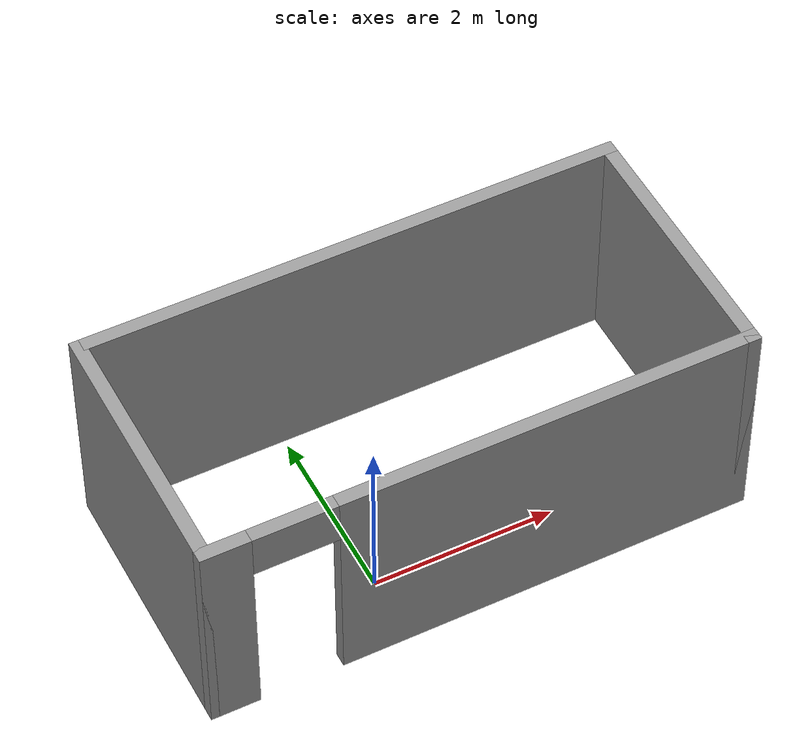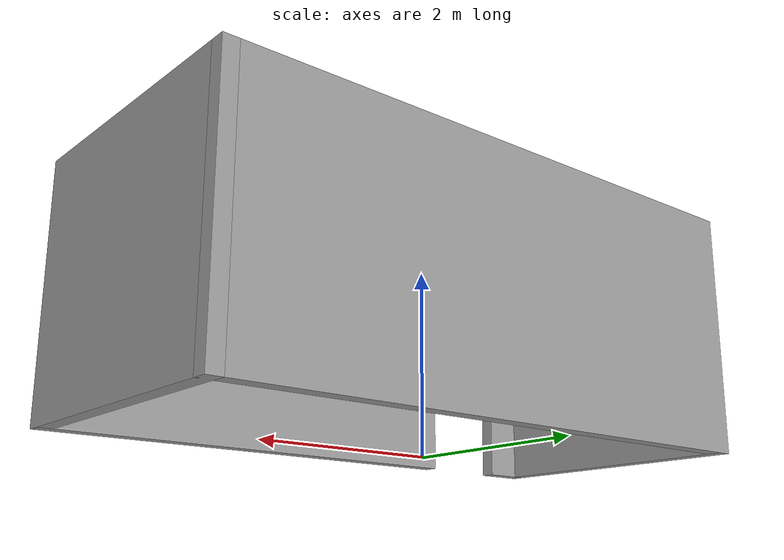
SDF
<?xml version='1.0'?>
<sdf version='1.6'>
  <model name='house_1'>
    <pose frame=''>0.835 0.738225 0 0 -0 0</pose>
    <link name='Wall_0'>
      <collision name='Wall_0_Collision'>
        <geometry>
          <box>
            <size>3 0.15 2.5</size>
          </box>
        </geometry>
        <pose frame=''>0 0 1.25 0 -0 0</pose>
      </collision>
      <visual name='Wall_0_Visual'>
        <pose frame=''>0 0 1.25 0 -0 0</pose>
        <geometry>
          <box>
            <size>3 0.15 2.5</size>
          </box>
        </geometry>
        <material>
          <script>
            <uri>file://media/materials/scripts/gazebo.material</uri>
            <name>Gazebo/Grey</name>
          </script>
          <ambient>1 1 1 1</ambient>
        </material>
        <meta>
          <layer>0</layer>
        </meta>
      </visual>
      <pose frame=''>-2.925 0 0 0 -0 1.5708</pose>
    </link>
    <link name='Wall_2'>
      <pose frame=''>-0 -1.425 0 0 -0 0</pose>
      <visual name='Wall_2_Visual_0'>
        <pose frame=''>-2.73272 0 1.25 0 -0 0</pose>
        <geometry>
          <box>
            <size>0.534567 0.15 2.5</size>
          </box>
        </geometry>
        <material>
          <script>
            <uri>file://media/materials/scripts/gazebo.material</uri>
            <name>Gazebo/Grey</name>
          </script>
          <ambient>1 1 1 1</ambient>
        </material>
        <meta>
          <layer>0</layer>
        </meta>
      </visual>
      <collision name='Wall_2_Collision_0'>
        <geometry>
          <box>
            <size>0.534567 0.15 2.5</size>
          </box>
        </geometry>
        <pose frame=''>-2.73272 0 1.25 0 -0 0</pose>
      </collision>
      <visual name='Wall_2_Visual_1'>
        <pose frame=''>0.717284 0 1.25 0 -0 0</pose>
        <geometry>
          <box>
            <size>4.56543 0.15 2.5</size>
          </box>
        </geometry>
        <material>
          <script>
            <uri>file://media/materials/scripts/gazebo.material</uri>
            <name>Gazebo/Grey</name>
          </script>
          <ambient>1 1 1 1</ambient>
        </material>
        <meta>
          <layer>0</layer>
        </meta>
      </visual>
      <collision name='Wall_2_Collision_1'>
        <geometry>
          <box>
            <size>4.56543 0.15 2.5</size>
          </box>
        </geometry>
        <pose frame=''>0.717284 0 1.25 0 -0 0</pose>
      </collision>
      <visual name='Wall_2_Visual_2'>
        <pose frame=''>-2.01543 0 2.25 0 -0 0</pose>
        <geometry>
          <box>
            <size>0.9 0.15 0.5</size>
          </box>
        </geometry>
        <material>
          <script>
            <uri>file://media/materials/scripts/gazebo.material</uri>
            <name>Gazebo/Grey</name>
          </script>
          <ambient>1 1 1 1</ambient>
        </material>
        <meta>
          <layer>0</layer>
        </meta>
      </visual>
      <collision name='Wall_2_Collision_2'>
        <geometry>
          <box>
            <size>0.9 0.15 0.5</size>
          </box>
        </geometry>
        <pose frame=''>-2.01543 0 2.25 0 -0 0</pose>
      </collision>
    </link>
    <link name='Wall_3'>
      <collision name='Wall_3_Collision'>
        <geometry>
          <box>
            <size>3 0.15 2.5</size>
          </box>
        </geometry>
        <pose frame=''>0 0 1.25 0 -0 0</pose>
      </collision>
      <visual name='Wall_3_Visual'>
        <pose frame=''>0 0 1.25 0 -0 0</pose>
        <geometry>
          <box>
            <size>3 0.15 2.5</size>
          </box>
        </geometry>
        <material>
          <script>
            <uri>file://media/materials/scripts/gazebo.material</uri>
            <name>Gazebo/Grey</name>
          </script>
          <ambient>1 1 1 1</ambient>
        </material>
        <meta>
          <layer>0</layer>
        </meta>
      </visual>
      <pose frame=''>2.925 0 0 0 -0 1.5708</pose>
    </link>
    <link name='Wall_4'>
      <collision name='Wall_4_Collision'>
        <geometry>
          <box>
            <size>6 0.15 2.5</size>
          </box>
        </geometry>
        <pose frame=''>0 0 1.25 0 -0 0</pose>
      </collision>
      <visual name='Wall_4_Visual'>
        <pose frame=''>0 0 1.25 0 -0 0</pose>
        <geometry>
          <box>
            <size>6 0.15 2.5</size>
          </box>
        </geometry>
        <material>
          <script>
            <uri>file://media/materials/scripts/gazebo.material</uri>
            <name>Gazebo/Grey</name>
          </script>
          <ambient>1 1 1 1</ambient>
        </material>
        <meta>
          <layer>0</layer>
        </meta>
      </visual>
      <pose frame=''>-0 1.425 0 0 -0 3.14159</pose>
    </link>
    <static>1</static>
  </model>
</sdf>
